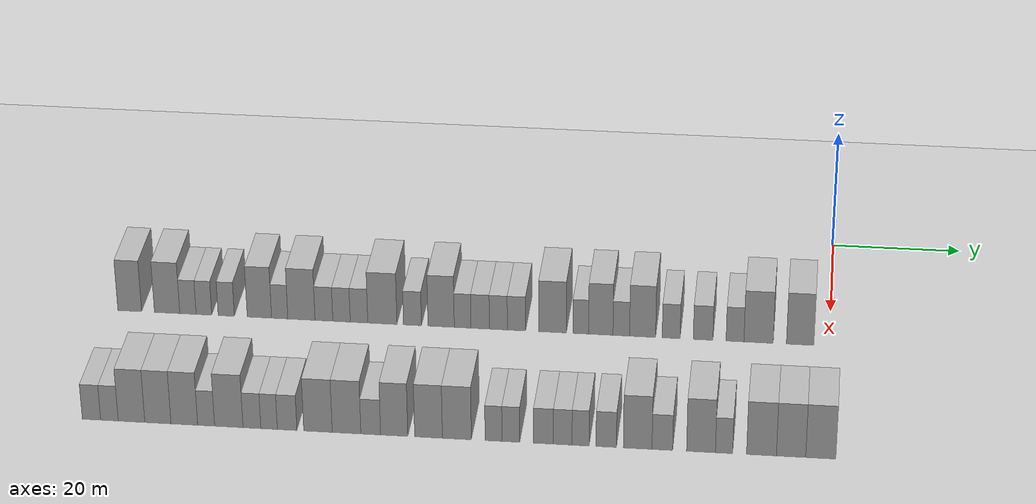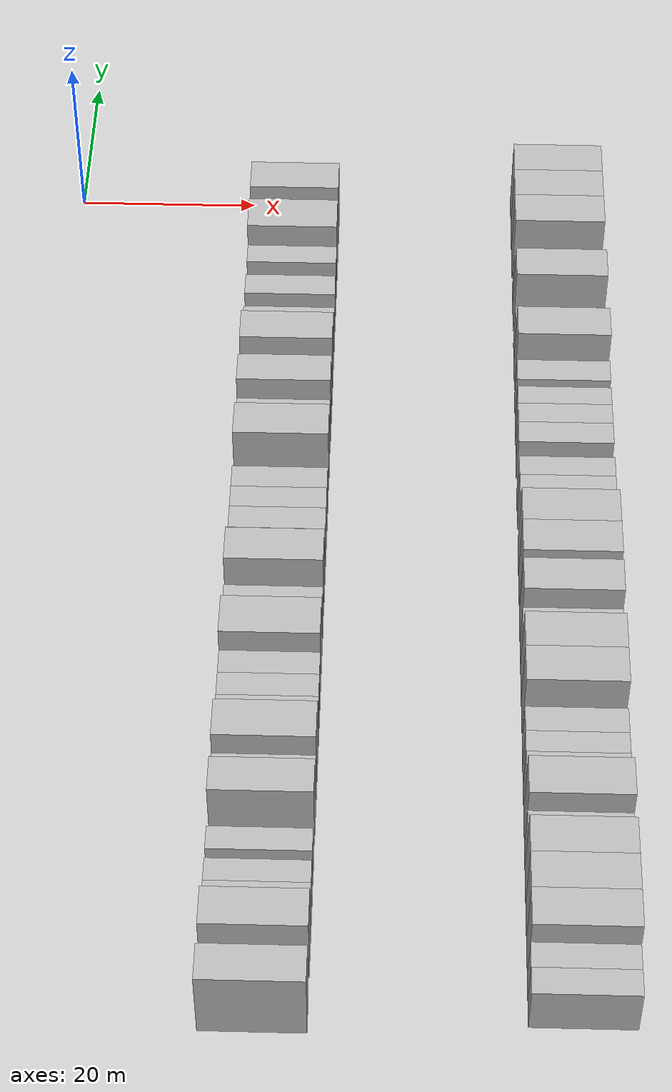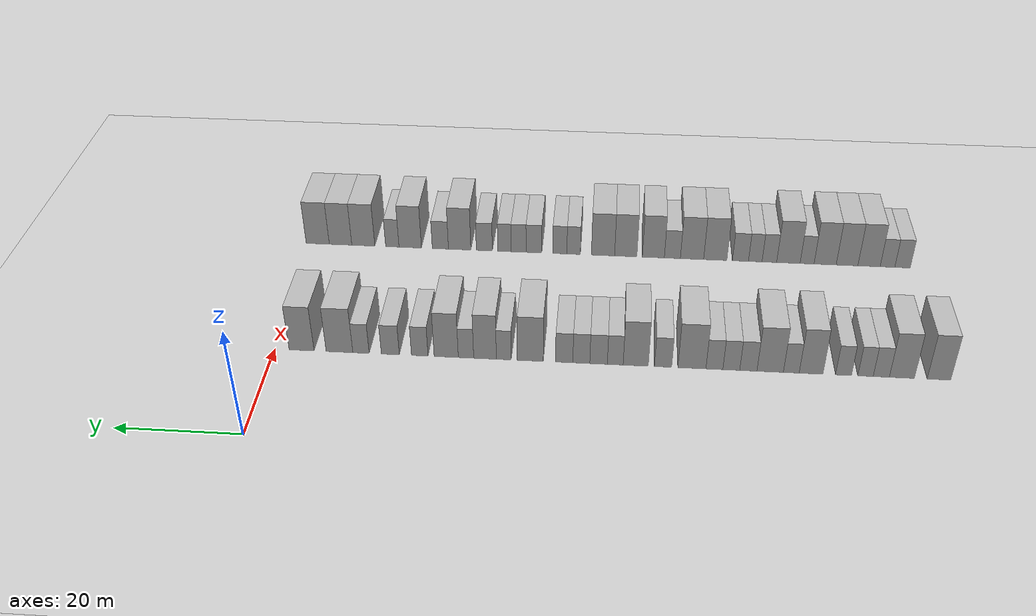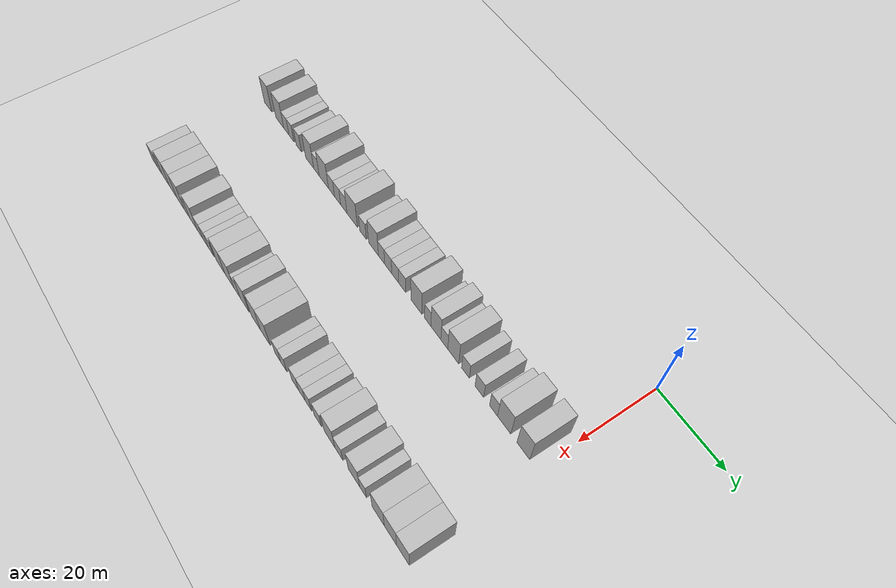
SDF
<sdf version="1.6">
 <world name="default">
  <include><name>ground_plane_1</name><uri>model://HANNAS_ground_plane</uri></include>
  <model name="building_30">
   <static>1</static>
   <pose>25.0000 -107.0710 0 0.000000 0.000000 0.000000</pose>
   <link name="link">
    <pose>0 0 4.50 0 0 0</pose>
    <collision name="collision"><geometry><box><size>10.0000 3.6937 9.0000</size></box></geometry></collision>
    <visual name="visual">
     <cast_shadows>0</cast_shadows>
     <geometry><box><size>10.0000 3.6937 9.0000</size></box></geometry>
     <material>
      <script>
       <uri>model://HANNAS_wall/materials/scripts</uri>
       <uri>model://HANNAS_wall/materials/textures</uri>
       <name>vrc/HANNAS_wall</name>
      </script>
     </material>
    </visual>
   </link>
  </model>
  <model name="building_31">
   <static>1</static>
   <pose>25.0000 -101.2576 0 0.000000 0.000000 0.000000</pose>
   <link name="link">
    <pose>0 0 4.50 0 0 0</pose>
    <collision name="collision"><geometry><box><size>10.0000 3.9331 9.0000</size></box></geometry></collision>
    <visual name="visual">
     <cast_shadows>0</cast_shadows>
     <geometry><box><size>10.0000 3.9331 9.0000</size></box></geometry>
     <material>
      <script>
       <uri>model://HANNAS_wall/materials/scripts</uri>
       <uri>model://HANNAS_wall/materials/textures</uri>
       <name>vrc/HANNAS_wall</name>
      </script>
     </material>
    </visual>
   </link>
  </model>
  <model name="building_32">
   <static>1</static>
   <pose>25.0000 -98.0210 0 0.000000 0.000000 0.000000</pose>
   <link name="link">
    <pose>0 0 3.00 0 0 0</pose>
    <collision name="collision"><geometry><box><size>10.0000 2.5402 6.0000</size></box></geometry></collision>
    <visual name="visual">
     <cast_shadows>0</cast_shadows>
     <geometry><box><size>10.0000 2.5402 6.0000</size></box></geometry>
     <material>
      <script>
       <uri>model://HANNAS_wall/materials/scripts</uri>
       <uri>model://HANNAS_wall/materials/textures</uri>
       <name>vrc/HANNAS_wall</name>
      </script>
     </material>
    </visual>
   </link>
  </model>
  <model name="building_33">
   <static>1</static>
   <pose>25.0000 -95.5394 0 0.000000 0.000000 0.000000</pose>
   <link name="link">
    <pose>0 0 3.00 0 0 0</pose>
    <collision name="collision"><geometry><box><size>10.0000 2.4229 6.0000</size></box></geometry></collision>
    <visual name="visual">
     <cast_shadows>0</cast_shadows>
     <geometry><box><size>10.0000 2.4229 6.0000</size></box></geometry>
     <material>
      <script>
       <uri>model://HANNAS_wall/materials/scripts</uri>
       <uri>model://HANNAS_wall/materials/textures</uri>
       <name>vrc/HANNAS_wall</name>
      </script>
     </material>
    </visual>
   </link>
  </model>
  <model name="building_34">
   <static>1</static>
   <pose>25.0000 -92.0725 0 0.000000 0.000000 0.000000</pose>
   <link name="link">
    <pose>0 0 3.00 0 0 0</pose>
    <collision name="collision"><geometry><box><size>10.0000 2.5108 6.0000</size></box></geometry></collision>
    <visual name="visual">
     <cast_shadows>0</cast_shadows>
     <geometry><box><size>10.0000 2.5108 6.0000</size></box></geometry>
     <material>
      <script>
       <uri>model://HANNAS_wall/materials/scripts</uri>
       <uri>model://HANNAS_wall/materials/textures</uri>
       <name>vrc/HANNAS_wall</name>
      </script>
     </material>
    </visual>
   </link>
  </model>
  <model name="building_35">
   <static>1</static>
   <pose>25.0000 -86.9352 0 0.000000 0.000000 0.000000</pose>
   <link name="link">
    <pose>0 0 4.50 0 0 0</pose>
    <collision name="collision"><geometry><box><size>10.0000 3.7638 9.0000</size></box></geometry></collision>
    <visual name="visual">
     <cast_shadows>0</cast_shadows>
     <geometry><box><size>10.0000 3.7638 9.0000</size></box></geometry>
     <material>
      <script>
       <uri>model://HANNAS_wall/materials/scripts</uri>
       <uri>model://HANNAS_wall/materials/textures</uri>
       <name>vrc/HANNAS_wall</name>
      </script>
     </material>
    </visual>
   </link>
  </model>
  <model name="building_36">
   <static>1</static>
   <pose>25.0000 -83.7981 0 0.000000 0.000000 0.000000</pose>
   <link name="link">
    <pose>0 0 3.00 0 0 0</pose>
    <collision name="collision"><geometry><box><size>10.0000 2.5105 6.0000</size></box></geometry></collision>
    <visual name="visual">
     <cast_shadows>0</cast_shadows>
     <geometry><box><size>10.0000 2.5105 6.0000</size></box></geometry>
     <material>
      <script>
       <uri>model://HANNAS_wall/materials/scripts</uri>
       <uri>model://HANNAS_wall/materials/textures</uri>
       <name>vrc/HANNAS_wall</name>
      </script>
     </material>
    </visual>
   </link>
  </model>
  <model name="building_37">
   <static>1</static>
   <pose>25.0000 -80.4423 0 0.000000 0.000000 0.000000</pose>
   <link name="link">
    <pose>0 0 4.50 0 0 0</pose>
    <collision name="collision"><geometry><box><size>10.0000 4.2010 9.0000</size></box></geometry></collision>
    <visual name="visual">
     <cast_shadows>0</cast_shadows>
     <geometry><box><size>10.0000 4.2010 9.0000</size></box></geometry>
     <material>
      <script>
       <uri>model://HANNAS_wall/materials/scripts</uri>
       <uri>model://HANNAS_wall/materials/textures</uri>
       <name>vrc/HANNAS_wall</name>
      </script>
     </material>
    </visual>
   </link>
  </model>
  <model name="building_38">
   <static>1</static>
   <pose>25.0000 -76.9729 0 0.000000 0.000000 0.000000</pose>
   <link name="link">
    <pose>0 0 3.00 0 0 0</pose>
    <collision name="collision"><geometry><box><size>10.0000 2.7378 6.0000</size></box></geometry></collision>
    <visual name="visual">
     <cast_shadows>0</cast_shadows>
     <geometry><box><size>10.0000 2.7378 6.0000</size></box></geometry>
     <material>
      <script>
       <uri>model://HANNAS_wall/materials/scripts</uri>
       <uri>model://HANNAS_wall/materials/textures</uri>
       <name>vrc/HANNAS_wall</name>
      </script>
     </material>
    </visual>
   </link>
  </model>
  <model name="building_39">
   <static>1</static>
   <pose>25.0000 -74.2615 0 0.000000 0.000000 0.000000</pose>
   <link name="link">
    <pose>0 0 3.00 0 0 0</pose>
    <collision name="collision"><geometry><box><size>10.0000 2.6850 6.0000</size></box></geometry></collision>
    <visual name="visual">
     <cast_shadows>0</cast_shadows>
     <geometry><box><size>10.0000 2.6850 6.0000</size></box></geometry>
     <material>
      <script>
       <uri>model://HANNAS_wall/materials/scripts</uri>
       <uri>model://HANNAS_wall/materials/textures</uri>
       <name>vrc/HANNAS_wall</name>
      </script>
     </material>
    </visual>
   </link>
  </model>
  <model name="building_40">
   <static>1</static>
   <pose>25.0000 -71.5659 0 0.000000 0.000000 0.000000</pose>
   <link name="link">
    <pose>0 0 3.00 0 0 0</pose>
    <collision name="collision"><geometry><box><size>10.0000 2.7063 6.0000</size></box></geometry></collision>
    <visual name="visual">
     <cast_shadows>0</cast_shadows>
     <geometry><box><size>10.0000 2.7063 6.0000</size></box></geometry>
     <material>
      <script>
       <uri>model://HANNAS_wall/materials/scripts</uri>
       <uri>model://HANNAS_wall/materials/textures</uri>
       <name>vrc/HANNAS_wall</name>
      </script>
     </material>
    </visual>
   </link>
  </model>
  <model name="building_41">
   <static>1</static>
   <pose>25.0000 -67.9681 0 0.000000 0.000000 0.000000</pose>
   <link name="link">
    <pose>0 0 4.50 0 0 0</pose>
    <collision name="collision"><geometry><box><size>10.0000 4.4892 9.0000</size></box></geometry></collision>
    <visual name="visual">
     <cast_shadows>0</cast_shadows>
     <geometry><box><size>10.0000 4.4892 9.0000</size></box></geometry>
     <material>
      <script>
       <uri>model://HANNAS_wall/materials/scripts</uri>
       <uri>model://HANNAS_wall/materials/textures</uri>
       <name>vrc/HANNAS_wall</name>
      </script>
     </material>
    </visual>
   </link>
  </model>
  <model name="building_42">
   <static>1</static>
   <pose>25.0000 -63.3430 0 0.000000 0.000000 0.000000</pose>
   <link name="link">
    <pose>0 0 3.00 0 0 0</pose>
    <collision name="collision"><geometry><box><size>10.0000 2.7610 6.0000</size></box></geometry></collision>
    <visual name="visual">
     <cast_shadows>0</cast_shadows>
     <geometry><box><size>10.0000 2.7610 6.0000</size></box></geometry>
     <material>
      <script>
       <uri>model://HANNAS_wall/materials/scripts</uri>
       <uri>model://HANNAS_wall/materials/textures</uri>
       <name>vrc/HANNAS_wall</name>
      </script>
     </material>
    </visual>
   </link>
  </model>
  <model name="building_43">
   <static>1</static>
   <pose>25.0000 -58.9447 0 0.000000 0.000000 0.000000</pose>
   <link name="link">
    <pose>0 0 4.50 0 0 0</pose>
    <collision name="collision"><geometry><box><size>10.0000 4.0356 9.0000</size></box></geometry></collision>
    <visual name="visual">
     <cast_shadows>0</cast_shadows>
     <geometry><box><size>10.0000 4.0356 9.0000</size></box></geometry>
     <material>
      <script>
       <uri>model://HANNAS_wall/materials/scripts</uri>
       <uri>model://HANNAS_wall/materials/textures</uri>
       <name>vrc/HANNAS_wall</name>
      </script>
     </material>
    </visual>
   </link>
  </model>
  <model name="building_44">
   <static>1</static>
   <pose>25.0000 -55.6526 0 0.000000 0.000000 0.000000</pose>
   <link name="link">
    <pose>0 0 3.00 0 0 0</pose>
    <collision name="collision"><geometry><box><size>10.0000 2.5485 6.0000</size></box></geometry></collision>
    <visual name="visual">
     <cast_shadows>0</cast_shadows>
     <geometry><box><size>10.0000 2.5485 6.0000</size></box></geometry>
     <material>
      <script>
       <uri>model://HANNAS_wall/materials/scripts</uri>
       <uri>model://HANNAS_wall/materials/textures</uri>
       <name>vrc/HANNAS_wall</name>
      </script>
     </material>
    </visual>
   </link>
  </model>
  <model name="building_45">
   <static>1</static>
   <pose>25.0000 -52.9642 0 0.000000 0.000000 0.000000</pose>
   <link name="link">
    <pose>0 0 3.00 0 0 0</pose>
    <collision name="collision"><geometry><box><size>10.0000 2.8284 6.0000</size></box></geometry></collision>
    <visual name="visual">
     <cast_shadows>0</cast_shadows>
     <geometry><box><size>10.0000 2.8284 6.0000</size></box></geometry>
     <material>
      <script>
       <uri>model://HANNAS_wall/materials/scripts</uri>
       <uri>model://HANNAS_wall/materials/textures</uri>
       <name>vrc/HANNAS_wall</name>
      </script>
     </material>
    </visual>
   </link>
  </model>
  <model name="building_46">
   <static>1</static>
   <pose>25.0000 -50.1796 0 0.000000 0.000000 0.000000</pose>
   <link name="link">
    <pose>0 0 3.00 0 0 0</pose>
    <collision name="collision"><geometry><box><size>10.0000 2.7408 6.0000</size></box></geometry></collision>
    <visual name="visual">
     <cast_shadows>0</cast_shadows>
     <geometry><box><size>10.0000 2.7408 6.0000</size></box></geometry>
     <material>
      <script>
       <uri>model://HANNAS_wall/materials/scripts</uri>
       <uri>model://HANNAS_wall/materials/textures</uri>
       <name>vrc/HANNAS_wall</name>
      </script>
     </material>
    </visual>
   </link>
  </model>
  <model name="building_47">
   <static>1</static>
   <pose>25.0000 -47.4117 0 0.000000 0.000000 0.000000</pose>
   <link name="link">
    <pose>0 0 3.00 0 0 0</pose>
    <collision name="collision"><geometry><box><size>10.0000 2.7948 6.0000</size></box></geometry></collision>
    <visual name="visual">
     <cast_shadows>0</cast_shadows>
     <geometry><box><size>10.0000 2.7948 6.0000</size></box></geometry>
     <material>
      <script>
       <uri>model://HANNAS_wall/materials/scripts</uri>
       <uri>model://HANNAS_wall/materials/textures</uri>
       <name>vrc/HANNAS_wall</name>
      </script>
     </material>
    </visual>
   </link>
  </model>
  <model name="building_48">
   <static>1</static>
   <pose>25.0000 -41.9068 0 0.000000 0.000000 0.000000</pose>
   <link name="link">
    <pose>0 0 4.50 0 0 0</pose>
    <collision name="collision"><geometry><box><size>10.0000 4.2150 9.0000</size></box></geometry></collision>
    <visual name="visual">
     <cast_shadows>0</cast_shadows>
     <geometry><box><size>10.0000 4.2150 9.0000</size></box></geometry>
     <material>
      <script>
       <uri>model://HANNAS_wall/materials/scripts</uri>
       <uri>model://HANNAS_wall/materials/textures</uri>
       <name>vrc/HANNAS_wall</name>
      </script>
     </material>
    </visual>
   </link>
  </model>
  <model name="building_49">
   <static>1</static>
   <pose>25.0000 -37.5975 0 0.000000 0.000000 0.000000</pose>
   <link name="link">
    <pose>0 0 3.00 0 0 0</pose>
    <collision name="collision"><geometry><box><size>10.0000 2.4036 6.0000</size></box></geometry></collision>
    <visual name="visual">
     <cast_shadows>0</cast_shadows>
     <geometry><box><size>10.0000 2.4036 6.0000</size></box></geometry>
     <material>
      <script>
       <uri>model://HANNAS_wall/materials/scripts</uri>
       <uri>model://HANNAS_wall/materials/textures</uri>
       <name>vrc/HANNAS_wall</name>
      </script>
     </material>
    </visual>
   </link>
  </model>
  <model name="building_50">
   <static>1</static>
   <pose>25.0000 -34.5441 0 0.000000 0.000000 0.000000</pose>
   <link name="link">
    <pose>0 0 4.50 0 0 0</pose>
    <collision name="collision"><geometry><box><size>10.0000 3.7032 9.0000</size></box></geometry></collision>
    <visual name="visual">
     <cast_shadows>0</cast_shadows>
     <geometry><box><size>10.0000 3.7032 9.0000</size></box></geometry>
     <material>
      <script>
       <uri>model://HANNAS_wall/materials/scripts</uri>
       <uri>model://HANNAS_wall/materials/textures</uri>
       <name>vrc/HANNAS_wall</name>
      </script>
     </material>
    </visual>
   </link>
  </model>
  <model name="building_51">
   <static>1</static>
   <pose>25.0000 -31.4358 0 0.000000 0.000000 0.000000</pose>
   <link name="link">
    <pose>0 0 3.00 0 0 0</pose>
    <collision name="collision"><geometry><box><size>10.0000 2.5134 6.0000</size></box></geometry></collision>
    <visual name="visual">
     <cast_shadows>0</cast_shadows>
     <geometry><box><size>10.0000 2.5134 6.0000</size></box></geometry>
     <material>
      <script>
       <uri>model://HANNAS_wall/materials/scripts</uri>
       <uri>model://HANNAS_wall/materials/textures</uri>
       <name>vrc/HANNAS_wall</name>
      </script>
     </material>
    </visual>
   </link>
  </model>
  <model name="building_52">
   <static>1</static>
   <pose>25.0000 -28.2039 0 0.000000 0.000000 0.000000</pose>
   <link name="link">
    <pose>0 0 4.50 0 0 0</pose>
    <collision name="collision"><geometry><box><size>10.0000 3.9502 9.0000</size></box></geometry></collision>
    <visual name="visual">
     <cast_shadows>0</cast_shadows>
     <geometry><box><size>10.0000 3.9502 9.0000</size></box></geometry>
     <material>
      <script>
       <uri>model://HANNAS_wall/materials/scripts</uri>
       <uri>model://HANNAS_wall/materials/textures</uri>
       <name>vrc/HANNAS_wall</name>
      </script>
     </material>
    </visual>
   </link>
  </model>
  <model name="building_53">
   <static>1</static>
   <pose>25.0000 -23.8718 0 0.000000 0.000000 0.000000</pose>
   <link name="link">
    <pose>0 0 3.00 0 0 0</pose>
    <collision name="collision"><geometry><box><size>10.0000 2.7140 6.0000</size></box></geometry></collision>
    <visual name="visual">
     <cast_shadows>0</cast_shadows>
     <geometry><box><size>10.0000 2.7140 6.0000</size></box></geometry>
     <material>
      <script>
       <uri>model://HANNAS_wall/materials/scripts</uri>
       <uri>model://HANNAS_wall/materials/textures</uri>
       <name>vrc/HANNAS_wall</name>
      </script>
     </material>
    </visual>
   </link>
  </model>
  <model name="building_54">
   <static>1</static>
   <pose>25.0000 -19.0356 0 0.000000 0.000000 0.000000</pose>
   <link name="link">
    <pose>0 0 3.00 0 0 0</pose>
    <collision name="collision"><geometry><box><size>10.0000 2.9583 6.0000</size></box></geometry></collision>
    <visual name="visual">
     <cast_shadows>0</cast_shadows>
     <geometry><box><size>10.0000 2.9583 6.0000</size></box></geometry>
     <material>
      <script>
       <uri>model://HANNAS_wall/materials/scripts</uri>
       <uri>model://HANNAS_wall/materials/textures</uri>
       <name>vrc/HANNAS_wall</name>
      </script>
     </material>
    </visual>
   </link>
  </model>
  <model name="building_55">
   <static>1</static>
   <pose>25.0000 -14.2076 0 0.000000 0.000000 0.000000</pose>
   <link name="link">
    <pose>0 0 3.00 0 0 0</pose>
    <collision name="collision"><geometry><box><size>10.0000 2.6978 6.0000</size></box></geometry></collision>
    <visual name="visual">
     <cast_shadows>0</cast_shadows>
     <geometry><box><size>10.0000 2.6978 6.0000</size></box></geometry>
     <material>
      <script>
       <uri>model://HANNAS_wall/materials/scripts</uri>
       <uri>model://HANNAS_wall/materials/textures</uri>
       <name>vrc/HANNAS_wall</name>
      </script>
     </material>
    </visual>
   </link>
  </model>
  <model name="building_56">
   <static>1</static>
   <pose>25.0000 -10.6530 0 0.000000 0.000000 0.000000</pose>
   <link name="link">
    <pose>0 0 4.50 0 0 0</pose>
    <collision name="collision"><geometry><box><size>10.0000 4.4113 9.0000</size></box></geometry></collision>
    <visual name="visual">
     <cast_shadows>0</cast_shadows>
     <geometry><box><size>10.0000 4.4113 9.0000</size></box></geometry>
     <material>
      <script>
       <uri>model://HANNAS_wall/materials/scripts</uri>
       <uri>model://HANNAS_wall/materials/textures</uri>
       <name>vrc/HANNAS_wall</name>
      </script>
     </material>
    </visual>
   </link>
  </model>
  <model name="building_57">
   <static>1</static>
   <pose>25.0000 -4.3810 0 0.000000 0.000000 0.000000</pose>
   <link name="link">
    <pose>0 0 4.50 0 0 0</pose>
    <collision name="collision"><geometry><box><size>10.0000 4.1327 9.0000</size></box></geometry></collision>
    <visual name="visual">
     <cast_shadows>0</cast_shadows>
     <geometry><box><size>10.0000 4.1327 9.0000</size></box></geometry>
     <material>
      <script>
       <uri>model://HANNAS_wall/materials/scripts</uri>
       <uri>model://HANNAS_wall/materials/textures</uri>
       <name>vrc/HANNAS_wall</name>
      </script>
     </material>
    </visual>
   </link>
  </model>
  <model name="building_146">
   <static>1</static>
   <pose>55.0000 -106.4268 0 0.000000 0.000000 0.000000</pose>
   <link name="link">
    <pose>0 0 3.00 0 0 0</pose>
    <collision name="collision"><geometry><box><size>10.0000 2.7090 6.0000</size></box></geometry></collision>
    <visual name="visual">
     <cast_shadows>0</cast_shadows>
     <geometry><box><size>10.0000 2.7090 6.0000</size></box></geometry>
     <material>
      <script>
       <uri>model://HANNAS_wall/materials/scripts</uri>
       <uri>model://HANNAS_wall/materials/textures</uri>
       <name>vrc/HANNAS_wall</name>
      </script>
     </material>
    </visual>
   </link>
  </model>
  <model name="building_147">
   <static>1</static>
   <pose>55.0000 -103.7777 0 0.000000 0.000000 0.000000</pose>
   <link name="link">
    <pose>0 0 3.00 0 0 0</pose>
    <collision name="collision"><geometry><box><size>10.0000 2.5892 6.0000</size></box></geometry></collision>
    <visual name="visual">
     <cast_shadows>0</cast_shadows>
     <geometry><box><size>10.0000 2.5892 6.0000</size></box></geometry>
     <material>
      <script>
       <uri>model://HANNAS_wall/materials/scripts</uri>
       <uri>model://HANNAS_wall/materials/textures</uri>
       <name>vrc/HANNAS_wall</name>
      </script>
     </material>
    </visual>
   </link>
  </model>
  <model name="building_148">
   <static>1</static>
   <pose>55.0000 -100.5180 0 0.000000 0.000000 0.000000</pose>
   <link name="link">
    <pose>0 0 4.50 0 0 0</pose>
    <collision name="collision"><geometry><box><size>10.0000 3.9303 9.0000</size></box></geometry></collision>
    <visual name="visual">
     <cast_shadows>0</cast_shadows>
     <geometry><box><size>10.0000 3.9303 9.0000</size></box></geometry>
     <material>
      <script>
       <uri>model://HANNAS_wall/materials/scripts</uri>
       <uri>model://HANNAS_wall/materials/textures</uri>
       <name>vrc/HANNAS_wall</name>
      </script>
     </material>
    </visual>
   </link>
  </model>
  <model name="building_149">
   <static>1</static>
   <pose>55.0000 -96.6294 0 0.000000 0.000000 0.000000</pose>
   <link name="link">
    <pose>0 0 4.50 0 0 0</pose>
    <collision name="collision"><geometry><box><size>10.0000 3.8467 9.0000</size></box></geometry></collision>
    <visual name="visual">
     <cast_shadows>0</cast_shadows>
     <geometry><box><size>10.0000 3.8467 9.0000</size></box></geometry>
     <material>
      <script>
       <uri>model://HANNAS_wall/materials/scripts</uri>
       <uri>model://HANNAS_wall/materials/textures</uri>
       <name>vrc/HANNAS_wall</name>
      </script>
     </material>
    </visual>
   </link>
  </model>
  <model name="building_150">
   <static>1</static>
   <pose>55.0000 -92.7429 0 0.000000 0.000000 0.000000</pose>
   <link name="link">
    <pose>0 0 4.50 0 0 0</pose>
    <collision name="collision"><geometry><box><size>10.0000 3.9264 9.0000</size></box></geometry></collision>
    <visual name="visual">
     <cast_shadows>0</cast_shadows>
     <geometry><box><size>10.0000 3.9264 9.0000</size></box></geometry>
     <material>
      <script>
       <uri>model://HANNAS_wall/materials/scripts</uri>
       <uri>model://HANNAS_wall/materials/textures</uri>
       <name>vrc/HANNAS_wall</name>
      </script>
     </material>
    </visual>
   </link>
  </model>
  <model name="building_151">
   <static>1</static>
   <pose>55.0000 -89.5380 0 0.000000 0.000000 0.000000</pose>
   <link name="link">
    <pose>0 0 3.00 0 0 0</pose>
    <collision name="collision"><geometry><box><size>10.0000 2.4833 6.0000</size></box></geometry></collision>
    <visual name="visual">
     <cast_shadows>0</cast_shadows>
     <geometry><box><size>10.0000 2.4833 6.0000</size></box></geometry>
     <material>
      <script>
       <uri>model://HANNAS_wall/materials/scripts</uri>
       <uri>model://HANNAS_wall/materials/textures</uri>
       <name>vrc/HANNAS_wall</name>
      </script>
     </material>
    </visual>
   </link>
  </model>
  <model name="building_152">
   <static>1</static>
   <pose>55.0000 -86.2099 0 0.000000 0.000000 0.000000</pose>
   <link name="link">
    <pose>0 0 4.50 0 0 0</pose>
    <collision name="collision"><geometry><box><size>10.0000 4.1730 9.0000</size></box></geometry></collision>
    <visual name="visual">
     <cast_shadows>0</cast_shadows>
     <geometry><box><size>10.0000 4.1730 9.0000</size></box></geometry>
     <material>
      <script>
       <uri>model://HANNAS_wall/materials/scripts</uri>
       <uri>model://HANNAS_wall/materials/textures</uri>
       <name>vrc/HANNAS_wall</name>
      </script>
     </material>
    </visual>
   </link>
  </model>
  <model name="building_153">
   <static>1</static>
   <pose>55.0000 -82.8176 0 0.000000 0.000000 0.000000</pose>
   <link name="link">
    <pose>0 0 3.00 0 0 0</pose>
    <collision name="collision"><geometry><box><size>10.0000 2.6115 6.0000</size></box></geometry></collision>
    <visual name="visual">
     <cast_shadows>0</cast_shadows>
     <geometry><box><size>10.0000 2.6115 6.0000</size></box></geometry>
     <material>
      <script>
       <uri>model://HANNAS_wall/materials/scripts</uri>
       <uri>model://HANNAS_wall/materials/textures</uri>
       <name>vrc/HANNAS_wall</name>
      </script>
     </material>
    </visual>
   </link>
  </model>
  <model name="building_154">
   <static>1</static>
   <pose>55.0000 -80.3013 0 0.000000 0.000000 0.000000</pose>
   <link name="link">
    <pose>0 0 3.00 0 0 0</pose>
    <collision name="collision"><geometry><box><size>10.0000 2.4211 6.0000</size></box></geometry></collision>
    <visual name="visual">
     <cast_shadows>0</cast_shadows>
     <geometry><box><size>10.0000 2.4211 6.0000</size></box></geometry>
     <material>
      <script>
       <uri>model://HANNAS_wall/materials/scripts</uri>
       <uri>model://HANNAS_wall/materials/textures</uri>
       <name>vrc/HANNAS_wall</name>
      </script>
     </material>
    </visual>
   </link>
  </model>
  <model name="building_155">
   <static>1</static>
   <pose>55.0000 -77.6585 0 0.000000 0.000000 0.000000</pose>
   <link name="link">
    <pose>0 0 3.00 0 0 0</pose>
    <collision name="collision"><geometry><box><size>10.0000 2.8646 6.0000</size></box></geometry></collision>
    <visual name="visual">
     <cast_shadows>0</cast_shadows>
     <geometry><box><size>10.0000 2.8646 6.0000</size></box></geometry>
     <material>
      <script>
       <uri>model://HANNAS_wall/materials/scripts</uri>
       <uri>model://HANNAS_wall/materials/textures</uri>
       <name>vrc/HANNAS_wall</name>
      </script>
     </material>
    </visual>
   </link>
  </model>
  <model name="building_156">
   <static>1</static>
   <pose>55.0000 -73.1479 0 0.000000 0.000000 0.000000</pose>
   <link name="link">
    <pose>0 0 4.50 0 0 0</pose>
    <collision name="collision"><geometry><box><size>10.0000 4.1566 9.0000</size></box></geometry></collision>
    <visual name="visual">
     <cast_shadows>0</cast_shadows>
     <geometry><box><size>10.0000 4.1566 9.0000</size></box></geometry>
     <material>
      <script>
       <uri>model://HANNAS_wall/materials/scripts</uri>
       <uri>model://HANNAS_wall/materials/textures</uri>
       <name>vrc/HANNAS_wall</name>
      </script>
     </material>
    </visual>
   </link>
  </model>
  <model name="building_157">
   <static>1</static>
   <pose>55.0000 -68.9772 0 0.000000 0.000000 0.000000</pose>
   <link name="link">
    <pose>0 0 4.50 0 0 0</pose>
    <collision name="collision"><geometry><box><size>10.0000 4.1848 9.0000</size></box></geometry></collision>
    <visual name="visual">
     <cast_shadows>0</cast_shadows>
     <geometry><box><size>10.0000 4.1848 9.0000</size></box></geometry>
     <material>
      <script>
       <uri>model://HANNAS_wall/materials/scripts</uri>
       <uri>model://HANNAS_wall/materials/textures</uri>
       <name>vrc/HANNAS_wall</name>
      </script>
     </material>
    </visual>
   </link>
  </model>
  <model name="building_158">
   <static>1</static>
   <pose>55.0000 -65.4466 0 0.000000 0.000000 0.000000</pose>
   <link name="link">
    <pose>0 0 3.00 0 0 0</pose>
    <collision name="collision"><geometry><box><size>10.0000 2.8765 6.0000</size></box></geometry></collision>
    <visual name="visual">
     <cast_shadows>0</cast_shadows>
     <geometry><box><size>10.0000 2.8765 6.0000</size></box></geometry>
     <material>
      <script>
       <uri>model://HANNAS_wall/materials/scripts</uri>
       <uri>model://HANNAS_wall/materials/textures</uri>
       <name>vrc/HANNAS_wall</name>
      </script>
     </material>
    </visual>
   </link>
  </model>
  <model name="building_159">
   <static>1</static>
   <pose>55.0000 -62.0311 0 0.000000 0.000000 0.000000</pose>
   <link name="link">
    <pose>0 0 4.50 0 0 0</pose>
    <collision name="collision"><geometry><box><size>10.0000 3.9545 9.0000</size></box></geometry></collision>
    <visual name="visual">
     <cast_shadows>0</cast_shadows>
     <geometry><box><size>10.0000 3.9545 9.0000</size></box></geometry>
     <material>
      <script>
       <uri>model://HANNAS_wall/materials/scripts</uri>
       <uri>model://HANNAS_wall/materials/textures</uri>
       <name>vrc/HANNAS_wall</name>
      </script>
     </material>
    </visual>
   </link>
  </model>
  <model name="building_160">
   <static>1</static>
   <pose>55.0000 -57.0418 0 0.000000 0.000000 0.000000</pose>
   <link name="link">
    <pose>0 0 4.50 0 0 0</pose>
    <collision name="collision"><geometry><box><size>10.0000 4.0240 9.0000</size></box></geometry></collision>
    <visual name="visual">
     <cast_shadows>0</cast_shadows>
     <geometry><box><size>10.0000 4.0240 9.0000</size></box></geometry>
     <material>
      <script>
       <uri>model://HANNAS_wall/materials/scripts</uri>
       <uri>model://HANNAS_wall/materials/textures</uri>
       <name>vrc/HANNAS_wall</name>
      </script>
     </material>
    </visual>
   </link>
  </model>
  <model name="building_161">
   <static>1</static>
   <pose>55.0000 -52.9329 0 0.000000 0.000000 0.000000</pose>
   <link name="link">
    <pose>0 0 4.50 0 0 0</pose>
    <collision name="collision"><geometry><box><size>10.0000 4.1940 9.0000</size></box></geometry></collision>
    <visual name="visual">
     <cast_shadows>0</cast_shadows>
     <geometry><box><size>10.0000 4.1940 9.0000</size></box></geometry>
     <material>
      <script>
       <uri>model://HANNAS_wall/materials/scripts</uri>
       <uri>model://HANNAS_wall/materials/textures</uri>
       <name>vrc/HANNAS_wall</name>
      </script>
     </material>
    </visual>
   </link>
  </model>
  <model name="building_162">
   <static>1</static>
   <pose>55.0000 -47.6119 0 0.000000 0.000000 0.000000</pose>
   <link name="link">
    <pose>0 0 3.00 0 0 0</pose>
    <collision name="collision"><geometry><box><size>10.0000 2.4480 6.0000</size></box></geometry></collision>
    <visual name="visual">
     <cast_shadows>0</cast_shadows>
     <geometry><box><size>10.0000 2.4480 6.0000</size></box></geometry>
     <material>
      <script>
       <uri>model://HANNAS_wall/materials/scripts</uri>
       <uri>model://HANNAS_wall/materials/textures</uri>
       <name>vrc/HANNAS_wall</name>
      </script>
     </material>
    </visual>
   </link>
  </model>
  <model name="building_163">
   <static>1</static>
   <pose>55.0000 -45.1024 0 0.000000 0.000000 0.000000</pose>
   <link name="link">
    <pose>0 0 3.00 0 0 0</pose>
    <collision name="collision"><geometry><box><size>10.0000 2.5709 6.0000</size></box></geometry></collision>
    <visual name="visual">
     <cast_shadows>0</cast_shadows>
     <geometry><box><size>10.0000 2.5709 6.0000</size></box></geometry>
     <material>
      <script>
       <uri>model://HANNAS_wall/materials/scripts</uri>
       <uri>model://HANNAS_wall/materials/textures</uri>
       <name>vrc/HANNAS_wall</name>
      </script>
     </material>
    </visual>
   </link>
  </model>
  <model name="building_164">
   <static>1</static>
   <pose>55.0000 -40.3890 0 0.000000 0.000000 0.000000</pose>
   <link name="link">
    <pose>0 0 3.00 0 0 0</pose>
    <collision name="collision"><geometry><box><size>10.0000 2.8559 6.0000</size></box></geometry></collision>
    <visual name="visual">
     <cast_shadows>0</cast_shadows>
     <geometry><box><size>10.0000 2.8559 6.0000</size></box></geometry>
     <material>
      <script>
       <uri>model://HANNAS_wall/materials/scripts</uri>
       <uri>model://HANNAS_wall/materials/textures</uri>
       <name>vrc/HANNAS_wall</name>
      </script>
     </material>
    </visual>
   </link>
  </model>
  <model name="building_165">
   <static>1</static>
   <pose>55.0000 -37.6115 0 0.000000 0.000000 0.000000</pose>
   <link name="link">
    <pose>0 0 3.00 0 0 0</pose>
    <collision name="collision"><geometry><box><size>10.0000 2.6992 6.0000</size></box></geometry></collision>
    <visual name="visual">
     <cast_shadows>0</cast_shadows>
     <geometry><box><size>10.0000 2.6992 6.0000</size></box></geometry>
     <material>
      <script>
       <uri>model://HANNAS_wall/materials/scripts</uri>
       <uri>model://HANNAS_wall/materials/textures</uri>
       <name>vrc/HANNAS_wall</name>
      </script>
     </material>
    </visual>
   </link>
  </model>
  <model name="building_166">
   <static>1</static>
   <pose>55.0000 -35.0346 0 0.000000 0.000000 0.000000</pose>
   <link name="link">
    <pose>0 0 3.00 0 0 0</pose>
    <collision name="collision"><geometry><box><size>10.0000 2.4547 6.0000</size></box></geometry></collision>
    <visual name="visual">
     <cast_shadows>0</cast_shadows>
     <geometry><box><size>10.0000 2.4547 6.0000</size></box></geometry>
     <material>
      <script>
       <uri>model://HANNAS_wall/materials/scripts</uri>
       <uri>model://HANNAS_wall/materials/textures</uri>
       <name>vrc/HANNAS_wall</name>
      </script>
     </material>
    </visual>
   </link>
  </model>
  <model name="building_167">
   <static>1</static>
   <pose>55.0000 -31.3411 0 0.000000 0.000000 0.000000</pose>
   <link name="link">
    <pose>0 0 3.00 0 0 0</pose>
    <collision name="collision"><geometry><box><size>10.0000 2.9322 6.0000</size></box></geometry></collision>
    <visual name="visual">
     <cast_shadows>0</cast_shadows>
     <geometry><box><size>10.0000 2.9322 6.0000</size></box></geometry>
     <material>
      <script>
       <uri>model://HANNAS_wall/materials/scripts</uri>
       <uri>model://HANNAS_wall/materials/textures</uri>
       <name>vrc/HANNAS_wall</name>
      </script>
     </material>
    </visual>
   </link>
  </model>
  <model name="building_168">
   <static>1</static>
   <pose>55.0000 -26.8176 0 0.000000 0.000000 0.000000</pose>
   <link name="link">
    <pose>0 0 4.50 0 0 0</pose>
    <collision name="collision"><geometry><box><size>10.0000 4.1148 9.0000</size></box></geometry></collision>
    <visual name="visual">
     <cast_shadows>0</cast_shadows>
     <geometry><box><size>10.0000 4.1148 9.0000</size></box></geometry>
     <material>
      <script>
       <uri>model://HANNAS_wall/materials/scripts</uri>
       <uri>model://HANNAS_wall/materials/textures</uri>
       <name>vrc/HANNAS_wall</name>
      </script>
     </material>
    </visual>
   </link>
  </model>
  <model name="building_169">
   <static>1</static>
   <pose>55.0000 -23.2777 0 0.000000 0.000000 0.000000</pose>
   <link name="link">
    <pose>0 0 3.00 0 0 0</pose>
    <collision name="collision"><geometry><box><size>10.0000 2.9651 6.0000</size></box></geometry></collision>
    <visual name="visual">
     <cast_shadows>0</cast_shadows>
     <geometry><box><size>10.0000 2.9651 6.0000</size></box></geometry>
     <material>
      <script>
       <uri>model://HANNAS_wall/materials/scripts</uri>
       <uri>model://HANNAS_wall/materials/textures</uri>
       <name>vrc/HANNAS_wall</name>
      </script>
     </material>
    </visual>
   </link>
  </model>
  <model name="building_170">
   <static>1</static>
   <pose>55.0000 -17.7275 0 0.000000 0.000000 0.000000</pose>
   <link name="link">
    <pose>0 0 4.50 0 0 0</pose>
    <collision name="collision"><geometry><box><size>10.0000 4.1352 9.0000</size></box></geometry></collision>
    <visual name="visual">
     <cast_shadows>0</cast_shadows>
     <geometry><box><size>10.0000 4.1352 9.0000</size></box></geometry>
     <material>
      <script>
       <uri>model://HANNAS_wall/materials/scripts</uri>
       <uri>model://HANNAS_wall/materials/textures</uri>
       <name>vrc/HANNAS_wall</name>
      </script>
     </material>
    </visual>
   </link>
  </model>
  <model name="building_171">
   <static>1</static>
   <pose>55.0000 -14.4316 0 0.000000 0.000000 0.000000</pose>
   <link name="link">
    <pose>0 0 3.00 0 0 0</pose>
    <collision name="collision"><geometry><box><size>10.0000 2.4566 6.0000</size></box></geometry></collision>
    <visual name="visual">
     <cast_shadows>0</cast_shadows>
     <geometry><box><size>10.0000 2.4566 6.0000</size></box></geometry>
     <material>
      <script>
       <uri>model://HANNAS_wall/materials/scripts</uri>
       <uri>model://HANNAS_wall/materials/textures</uri>
       <name>vrc/HANNAS_wall</name>
      </script>
     </material>
    </visual>
   </link>
  </model>
  <model name="building_172">
   <static>1</static>
   <pose>55.0000 -9.0710 0 0.000000 0.000000 0.000000</pose>
   <link name="link">
    <pose>0 0 4.50 0 0 0</pose>
    <collision name="collision"><geometry><box><size>10.0000 4.2646 9.0000</size></box></geometry></collision>
    <visual name="visual">
     <cast_shadows>0</cast_shadows>
     <geometry><box><size>10.0000 4.2646 9.0000</size></box></geometry>
     <material>
      <script>
       <uri>model://HANNAS_wall/materials/scripts</uri>
       <uri>model://HANNAS_wall/materials/textures</uri>
       <name>vrc/HANNAS_wall</name>
      </script>
     </material>
    </visual>
   </link>
  </model>
  <model name="building_173">
   <static>1</static>
   <pose>55.0000 -4.8510 0 0.000000 0.000000 0.000000</pose>
   <link name="link">
    <pose>0 0 4.50 0 0 0</pose>
    <collision name="collision"><geometry><box><size>10.0000 4.1755 9.0000</size></box></geometry></collision>
    <visual name="visual">
     <cast_shadows>0</cast_shadows>
     <geometry><box><size>10.0000 4.1755 9.0000</size></box></geometry>
     <material>
      <script>
       <uri>model://HANNAS_wall/materials/scripts</uri>
       <uri>model://HANNAS_wall/materials/textures</uri>
       <name>vrc/HANNAS_wall</name>
      </script>
     </material>
    </visual>
   </link>
  </model>
  <model name="building_174">
   <static>1</static>
   <pose>55.0000 -0.6216 0 0.000000 0.000000 0.000000</pose>
   <link name="link">
    <pose>0 0 4.50 0 0 0</pose>
    <collision name="collision"><geometry><box><size>10.0000 4.2832 9.0000</size></box></geometry></collision>
    <visual name="visual">
     <cast_shadows>0</cast_shadows>
     <geometry><box><size>10.0000 4.2832 9.0000</size></box></geometry>
     <material>
      <script>
       <uri>model://HANNAS_wall/materials/scripts</uri>
       <uri>model://HANNAS_wall/materials/textures</uri>
       <name>vrc/HANNAS_wall</name>
      </script>
     </material>
    </visual>
   </link>
  </model>
 </world>
</sdf>
